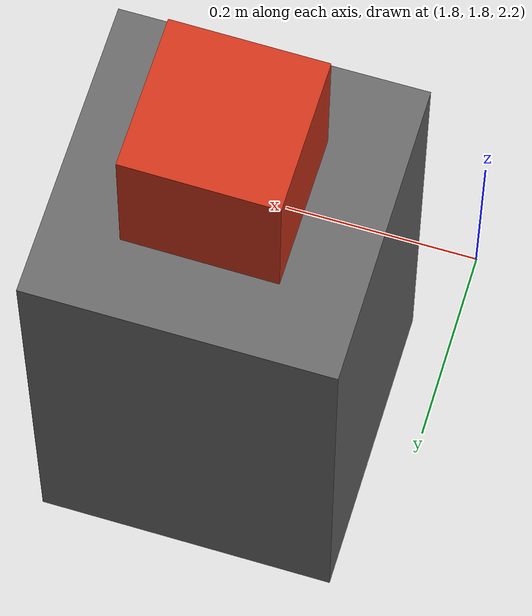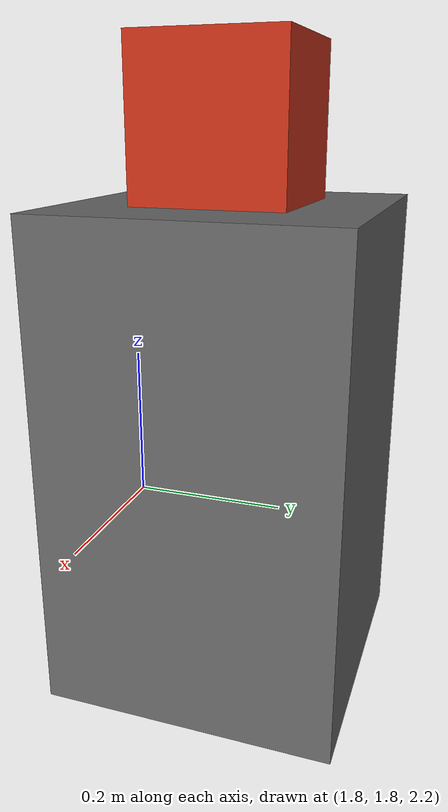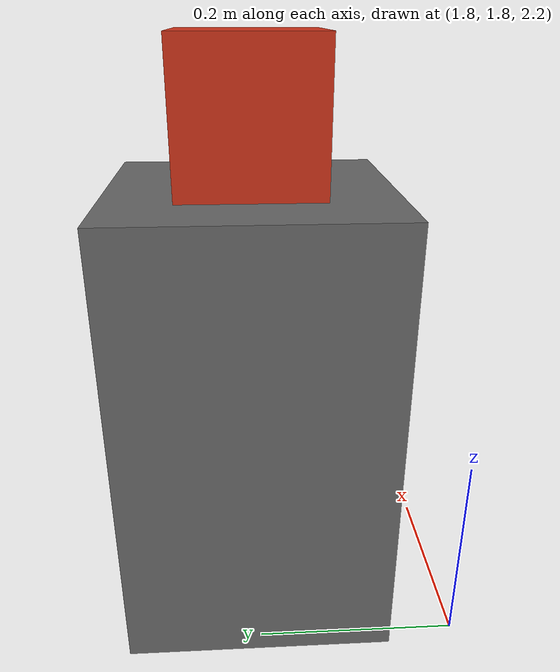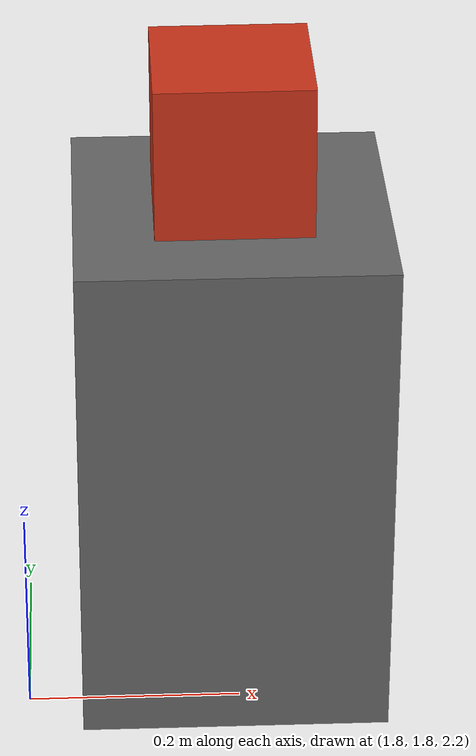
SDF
<?xml version="1.0" encoding="UTF-8"?>
<sdf version="1.9">
  <world name="default_payload_test1">
    <physics type="ode">
      <max_step_size>0.004</max_step_size>
      <real_time_factor>1.0</real_time_factor>
      <real_time_update_rate>250</real_time_update_rate>
    </physics>
    <gravity>0 0 -9.8</gravity>
    <magnetic_field>6e-06 2.3e-05 -4.2e-05</magnetic_field>
    <atmosphere type="adiabatic"/>
    <scene>
      <grid>false</grid>
      <ambient>0.4 0.4 0.4 1</ambient>
      <background>0.7 0.7 0.7 1</background>
      <shadows>true</shadows>
    </scene>
    <model name="ground_plane">
      <static>true</static>
      <link name="link">
        <collision name="collision">
          <geometry>
            <plane>
              <normal>0 0 1</normal>
              <size>1 1</size>
            </plane>
          </geometry>
          <surface>
            <friction>
              <ode/>
            </friction>
            <bounce/>
            <contact/>
          </surface>
        </collision>
        <visual name="visual">
          <geometry>
            <plane>
              <normal>0 0 1</normal>
              <size>500 500</size>
            </plane>
          </geometry>
          <material>
            <ambient>0.8 0.8 0.8 1</ambient>
            <diffuse>0.8 0.8 0.8 1</diffuse>
            <specular>0.8 0.8 0.8 1</specular>
          </material>
        </visual>
        <pose>0 0 0 0 -0 0</pose>
        <inertial>
          <pose>0 0 0 0 -0 0</pose>
          <mass>1</mass>
          <inertia>
            <ixx>1</ixx>
            <ixy>0</ixy>
            <ixz>0</ixz>
            <iyy>1</iyy>
            <iyz>0</iyz>
            <izz>1</izz>
          </inertia>
        </inertial>
        <enable_wind>false</enable_wind>
      </link>
      <pose>0 0 0 0 -0 0</pose>
      <self_collide>false</self_collide>
    </model>
    <light name="sunUTC" type="directional">
      <pose>0 0 500 0 -0 0</pose>
      <cast_shadows>true</cast_shadows>
      <intensity>1</intensity>
      <direction>0.001 0.625 -0.78</direction>
      <diffuse>0.904 0.904 0.904 1</diffuse>
      <specular>0.271 0.271 0.271 1</specular>
      <attenuation>
        <range>2000</range>
        <linear>0</linear>
        <constant>1</constant>
        <quadratic>0</quadratic>
      </attenuation>
      <spot>
        <inner_angle>0</inner_angle>
        <outer_angle>0</outer_angle>
        <falloff>0</falloff>
      </spot>
    </light>
    <spherical_coordinates>
      <surface_model>EARTH_WGS84</surface_model>
      <world_frame_orientation>ENU</world_frame_orientation>
      <latitude_deg>47.397971057728974</latitude_deg>
      <longitude_deg> 8.546163739800146</longitude_deg>
      <elevation>0</elevation>
    </spherical_coordinates>

    <model name="payload_stand">
      <static>true</static>
      <pose>2.0 2.0 2.375 0 0 0</pose>
      <link name="stand_link">
        <visual name="visual">
          <geometry>
            <box>
              <size>0.3 0.3 0.5</size>
            </box>
          </geometry>
          <material>
            <ambient>0.4 0.4 0.4 1</ambient>
            <diffuse>0.4 0.4 0.4 1</diffuse>
          </material>
        </visual>
        <collision name="collision">
          <geometry>
            <box>
              <size>0.3 0.3 0.5</size>
            </box>
          </geometry>
        </collision>
      </link>
    </model>

    <model name="payload">
      <!-- 测试1专用:pose 直接设为上一轮实测落定后的姿态(2.000710 2.000600
           2.700470, rpy 0.000001 -0.006289 -0.004026),消除"从悬空位置自由
           下落到接触平衡"这个物理沉降瞬态,目的是排查是否就是这个瞬态
           干扰了 EKF2 收敛窗口。 -->
      <pose>2.000710 2.000600 2.700470 0.000001 -0.006289 -0.004026</pose>
      <link name="payload_link">
        <inertial>
          <mass>1.5</mass>
          <inertia>
            <ixx>0.005625</ixx>
            <ixy>0</ixy>
            <ixz>0</ixz>
            <iyy>0.005625</iyy>
            <iyz>0</iyz>
            <izz>0.005625</izz>
          </inertia>
        </inertial>
        <visual name="visual">
          <geometry>
            <box>
              <size>0.15 0.15 0.15</size>
            </box>
          </geometry>
          <material>
            <ambient>0.8 0.2 0.1 1</ambient>
            <diffuse>0.8 0.2 0.1 1</diffuse>
          </material>
        </visual>
        <collision name="collision">
          <geometry>
            <box>
              <size>0.15 0.15 0.15</size>
            </box>
          </geometry>
        </collision>
      </link>
    </model>
  </world>
</sdf>
